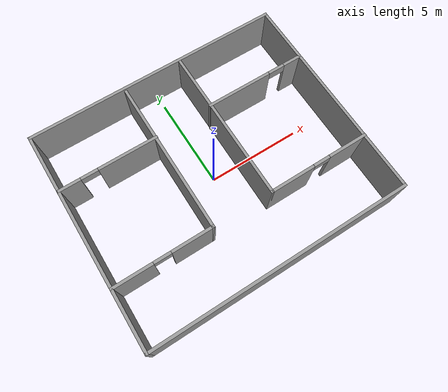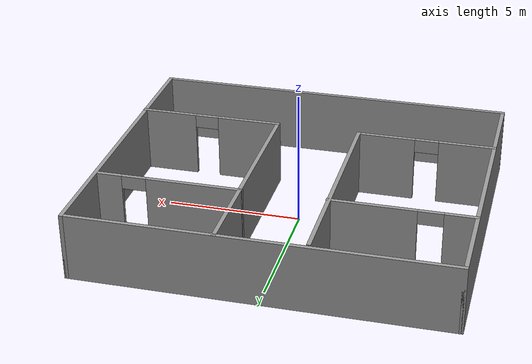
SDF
<?xml version='1.0'?>
<sdf version='1.7'>
  <model name='floor_plan2'>
    <pose>0.023383 0.010246 0 0 -0 0</pose>
    <link name='Wall_0'>
      <collision name='Wall_0_Collision'>
        <geometry>
          <box>
            <size>13.75 0.15 2.5</size>
          </box>
        </geometry>
        <pose>0 0 1.25 0 -0 0</pose>
      </collision>
      <visual name='Wall_0_Visual'>
        <pose>0 0 1.25 0 -0 0</pose>
        <geometry>
          <box>
            <size>13.75 0.15 2.5</size>
          </box>
        </geometry>
        <material>
          <script>
            <uri>file://media/materials/scripts/gazebo.material</uri>
            <name>Gazebo/Grey</name>
          </script>
          <ambient>1 1 1 1</ambient>
        </material>
        <meta>
          <layer>0</layer>
        </meta>
      </visual>
      <pose>-0.007216 5.675 0 0 -0 0</pose>
    </link>
    <link name='Wall_1'>
      <collision name='Wall_1_Collision'>
        <geometry>
          <box>
            <size>11.5 0.15 2.5</size>
          </box>
        </geometry>
        <pose>0 0 1.25 0 -0 0</pose>
      </collision>
      <visual name='Wall_1_Visual'>
        <pose>0 0 1.25 0 -0 0</pose>
        <geometry>
          <box>
            <size>11.5 0.15 2.5</size>
          </box>
        </geometry>
        <material>
          <script>
            <uri>file://media/materials/scripts/gazebo.material</uri>
            <name>Gazebo/Grey</name>
          </script>
          <ambient>1 1 1 1</ambient>
        </material>
        <meta>
          <layer>0</layer>
        </meta>
      </visual>
      <pose>6.79278 0 0 0 -0 -1.5708</pose>
    </link>
    <link name='Wall_11'>
      <pose>-4.22728 2.52503 0 0 -0 0</pose>
      <visual name='Wall_11_Visual_0'>
        <pose>-2.03762 0 1.25 0 -0 0</pose>
        <geometry>
          <box>
            <size>1.17475 0.15 2.5</size>
          </box>
        </geometry>
        <material>
          <script>
            <uri>file://media/materials/scripts/gazebo.material</uri>
            <name>Gazebo/Grey</name>
          </script>
          <ambient>1 1 1 1</ambient>
        </material>
        <meta>
          <layer>0</layer>
        </meta>
      </visual>
      <collision name='Wall_11_Collision_0'>
        <geometry>
          <box>
            <size>1.17475 0.15 2.5</size>
          </box>
        </geometry>
        <pose>-2.03762 0 1.25 0 -0 0</pose>
      </collision>
      <visual name='Wall_11_Visual_1'>
        <pose>1.03737 0 1.25 0 -0 0</pose>
        <geometry>
          <box>
            <size>3.17525 0.15 2.5</size>
          </box>
        </geometry>
        <material>
          <script>
            <uri>file://media/materials/scripts/gazebo.material</uri>
            <name>Gazebo/Grey</name>
          </script>
          <ambient>1 1 1 1</ambient>
        </material>
        <meta>
          <layer>0</layer>
        </meta>
      </visual>
      <collision name='Wall_11_Collision_1'>
        <geometry>
          <box>
            <size>3.17525 0.15 2.5</size>
          </box>
        </geometry>
        <pose>1.03737 0 1.25 0 -0 0</pose>
      </collision>
      <visual name='Wall_11_Visual_2'>
        <pose>-1.00025 0 2.25 0 -0 0</pose>
        <geometry>
          <box>
            <size>0.9 0.15 0.5</size>
          </box>
        </geometry>
        <material>
          <script>
            <uri>file://media/materials/scripts/gazebo.material</uri>
            <name>Gazebo/Grey</name>
          </script>
          <ambient>1 1 1 1</ambient>
        </material>
        <meta>
          <layer>0</layer>
        </meta>
      </visual>
      <collision name='Wall_11_Collision_2'>
        <geometry>
          <box>
            <size>0.9 0.15 0.5</size>
          </box>
        </geometry>
        <pose>-1.00025 0 2.25 0 -0 0</pose>
      </collision>
    </link>
    <link name='Wall_13'>
      <pose>4.10909 2.59443 0 0 -0 0</pose>
      <visual name='Wall_13_Visual_0'>
        <pose>-0.982964 0 1.25 0 -0 0</pose>
        <geometry>
          <box>
            <size>3.53407 0.15 2.5</size>
          </box>
        </geometry>
        <material>
          <script>
            <uri>file://media/materials/scripts/gazebo.material</uri>
            <name>Gazebo/Grey</name>
          </script>
          <ambient>1 1 1 1</ambient>
        </material>
        <meta>
          <layer>0</layer>
        </meta>
      </visual>
      <collision name='Wall_13_Collision_0'>
        <geometry>
          <box>
            <size>3.53407 0.15 2.5</size>
          </box>
        </geometry>
        <pose>-0.982964 0 1.25 0 -0 0</pose>
      </collision>
      <visual name='Wall_13_Visual_1'>
        <pose>2.21704 0 1.25 0 -0 0</pose>
        <geometry>
          <box>
            <size>1.06593 0.15 2.5</size>
          </box>
        </geometry>
        <material>
          <script>
            <uri>file://media/materials/scripts/gazebo.material</uri>
            <name>Gazebo/Grey</name>
          </script>
          <ambient>1 1 1 1</ambient>
        </material>
        <meta>
          <layer>0</layer>
        </meta>
      </visual>
      <collision name='Wall_13_Collision_1'>
        <geometry>
          <box>
            <size>1.06593 0.15 2.5</size>
          </box>
        </geometry>
        <pose>2.21704 0 1.25 0 -0 0</pose>
      </collision>
      <visual name='Wall_13_Visual_2'>
        <pose>1.23407 0 2.25 0 -0 0</pose>
        <geometry>
          <box>
            <size>0.9 0.15 0.5</size>
          </box>
        </geometry>
        <material>
          <script>
            <uri>file://media/materials/scripts/gazebo.material</uri>
            <name>Gazebo/Grey</name>
          </script>
          <ambient>1 1 1 1</ambient>
        </material>
        <meta>
          <layer>0</layer>
        </meta>
      </visual>
      <collision name='Wall_13_Collision_2'>
        <geometry>
          <box>
            <size>0.9 0.15 0.5</size>
          </box>
        </geometry>
        <pose>1.23407 0 2.25 0 -0 0</pose>
      </collision>
    </link>
    <link name='Wall_2'>
      <collision name='Wall_2_Collision'>
        <geometry>
          <box>
            <size>13.75 0.15 2.5</size>
          </box>
        </geometry>
        <pose>0 0 1.25 0 -0 0</pose>
      </collision>
      <visual name='Wall_2_Visual'>
        <pose>0 0 1.25 0 -0 0</pose>
        <geometry>
          <box>
            <size>13.75 0.15 2.5</size>
          </box>
        </geometry>
        <material>
          <script>
            <uri>file://media/materials/scripts/gazebo.material</uri>
            <name>Gazebo/Grey</name>
          </script>
          <ambient>1 1 1 1</ambient>
        </material>
        <meta>
          <layer>0</layer>
        </meta>
      </visual>
      <pose>-0.007216 -5.675 0 0 -0 3.14159</pose>
    </link>
    <link name='Wall_3'>
      <collision name='Wall_3_Collision'>
        <geometry>
          <box>
            <size>11.5 0.15 2.5</size>
          </box>
        </geometry>
        <pose>0 0 1.25 0 -0 0</pose>
      </collision>
      <visual name='Wall_3_Visual'>
        <pose>0 0 1.25 0 -0 0</pose>
        <geometry>
          <box>
            <size>11.5 0.15 2.5</size>
          </box>
        </geometry>
        <material>
          <script>
            <uri>file://media/materials/scripts/gazebo.material</uri>
            <name>Gazebo/Grey</name>
          </script>
          <ambient>1 1 1 1</ambient>
        </material>
        <meta>
          <layer>0</layer>
        </meta>
      </visual>
      <pose>-6.80722 0 0 0 -0 1.5708</pose>
    </link>
    <link name='Wall_5'>
      <pose>-4.25041 -2.63309 0 0 -0 0</pose>
      <visual name='Wall_5_Visual_0'>
        <pose>-1.56345 0 1.25 0 -0 0</pose>
        <geometry>
          <box>
            <size>2.1231 0.15 2.5</size>
          </box>
        </geometry>
        <material>
          <script>
            <uri>file://media/materials/scripts/gazebo.material</uri>
            <name>Gazebo/Grey</name>
          </script>
          <ambient>1 1 1 1</ambient>
        </material>
        <meta>
          <layer>0</layer>
        </meta>
      </visual>
      <collision name='Wall_5_Collision_0'>
        <geometry>
          <box>
            <size>2.1231 0.15 2.5</size>
          </box>
        </geometry>
        <pose>-1.56345 0 1.25 0 -0 0</pose>
      </collision>
      <visual name='Wall_5_Visual_1'>
        <pose>1.51155 0 1.25 0 -0 0</pose>
        <geometry>
          <box>
            <size>2.22689 0.15 2.5</size>
          </box>
        </geometry>
        <material>
          <script>
            <uri>file://media/materials/scripts/gazebo.material</uri>
            <name>Gazebo/Grey</name>
          </script>
          <ambient>1 1 1 1</ambient>
        </material>
        <meta>
          <layer>0</layer>
        </meta>
      </visual>
      <collision name='Wall_5_Collision_1'>
        <geometry>
          <box>
            <size>2.22689 0.15 2.5</size>
          </box>
        </geometry>
        <pose>1.51155 0 1.25 0 -0 0</pose>
      </collision>
      <visual name='Wall_5_Visual_2'>
        <pose>-0.051895 0 2.25 0 -0 0</pose>
        <geometry>
          <box>
            <size>0.9 0.15 0.5</size>
          </box>
        </geometry>
        <material>
          <script>
            <uri>file://media/materials/scripts/gazebo.material</uri>
            <name>Gazebo/Grey</name>
          </script>
          <ambient>1 1 1 1</ambient>
        </material>
        <meta>
          <layer>0</layer>
        </meta>
      </visual>
      <collision name='Wall_5_Collision_2'>
        <geometry>
          <box>
            <size>0.9 0.15 0.5</size>
          </box>
        </geometry>
        <pose>-0.051895 0 2.25 0 -0 0</pose>
      </collision>
    </link>
    <link name='Wall_6'>
      <collision name='Wall_6_Collision'>
        <geometry>
          <box>
            <size>8.25 0.15 2.5</size>
          </box>
        </geometry>
        <pose>0 0 1.25 0 -0 0</pose>
      </collision>
      <visual name='Wall_6_Visual'>
        <pose>0 0 1.25 0 -0 0</pose>
        <geometry>
          <box>
            <size>8.25 0.15 2.5</size>
          </box>
        </geometry>
        <material>
          <script>
            <uri>file://media/materials/scripts/gazebo.material</uri>
            <name>Gazebo/Grey</name>
          </script>
          <ambient>1 1 1 1</ambient>
        </material>
        <meta>
          <layer>0</layer>
        </meta>
      </visual>
      <pose>-1.70041 1.41691 0 0 -0 1.5708</pose>
    </link>
    <link name='Wall_8'>
      <collision name='Wall_8_Collision'>
        <geometry>
          <box>
            <size>8.5 0.15 2.5</size>
          </box>
        </geometry>
        <pose>0 0 1.25 0 -0 0</pose>
      </collision>
      <visual name='Wall_8_Visual'>
        <pose>0 0 1.25 0 -0 0</pose>
        <geometry>
          <box>
            <size>8.5 0.15 2.5</size>
          </box>
        </geometry>
        <material>
          <script>
            <uri>file://media/materials/scripts/gazebo.material</uri>
            <name>Gazebo/Grey</name>
          </script>
          <ambient>1 1 1 1</ambient>
        </material>
        <meta>
          <layer>0</layer>
        </meta>
      </visual>
      <pose>1.45722 1.4958 0 0 -0 -1.5708</pose>
    </link>
    <link name='Wall_9'>
      <pose>4.13222 -2.6792 0 0 -0 0</pose>
      <visual name='Wall_9_Visual_0'>
        <pose>-1.52653 0 1.25 0 -0 0</pose>
        <geometry>
          <box>
            <size>2.44693 0.15 2.5</size>
          </box>
        </geometry>
        <material>
          <script>
            <uri>file://media/materials/scripts/gazebo.material</uri>
            <name>Gazebo/Grey</name>
          </script>
          <ambient>1 1 1 1</ambient>
        </material>
        <meta>
          <layer>0</layer>
        </meta>
      </visual>
      <collision name='Wall_9_Collision_0'>
        <geometry>
          <box>
            <size>2.44693 0.15 2.5</size>
          </box>
        </geometry>
        <pose>-1.52653 0 1.25 0 -0 0</pose>
      </collision>
      <visual name='Wall_9_Visual_1'>
        <pose>1.67347 0 1.25 0 -0 0</pose>
        <geometry>
          <box>
            <size>2.15307 0.15 2.5</size>
          </box>
        </geometry>
        <material>
          <script>
            <uri>file://media/materials/scripts/gazebo.material</uri>
            <name>Gazebo/Grey</name>
          </script>
          <ambient>1 1 1 1</ambient>
        </material>
        <meta>
          <layer>0</layer>
        </meta>
      </visual>
      <collision name='Wall_9_Collision_1'>
        <geometry>
          <box>
            <size>2.15307 0.15 2.5</size>
          </box>
        </geometry>
        <pose>1.67347 0 1.25 0 -0 0</pose>
      </collision>
      <visual name='Wall_9_Visual_2'>
        <pose>0.146934 0 2.25 0 -0 0</pose>
        <geometry>
          <box>
            <size>0.9 0.15 0.5</size>
          </box>
        </geometry>
        <material>
          <script>
            <uri>file://media/materials/scripts/gazebo.material</uri>
            <name>Gazebo/Grey</name>
          </script>
          <ambient>1 1 1 1</ambient>
        </material>
        <meta>
          <layer>0</layer>
        </meta>
      </visual>
      <collision name='Wall_9_Collision_2'>
        <geometry>
          <box>
            <size>0.9 0.15 0.5</size>
          </box>
        </geometry>
        <pose>0.146934 0 2.25 0 -0 0</pose>
      </collision>
    </link>
    <static>1</static>
  </model>
</sdf>
